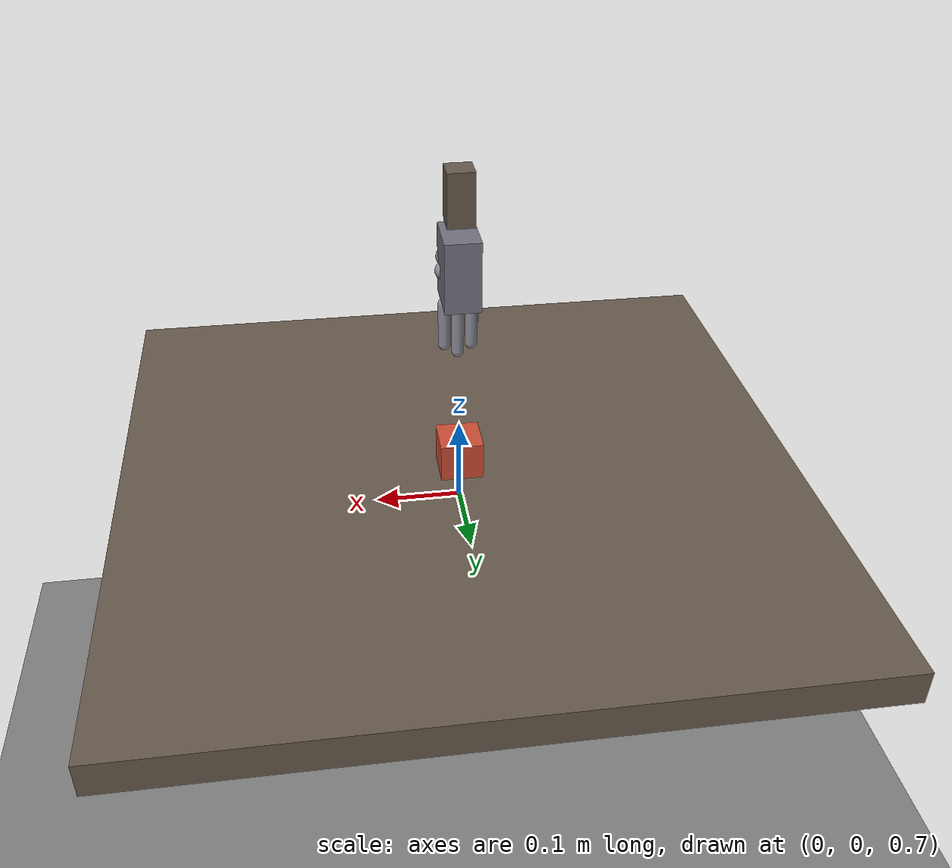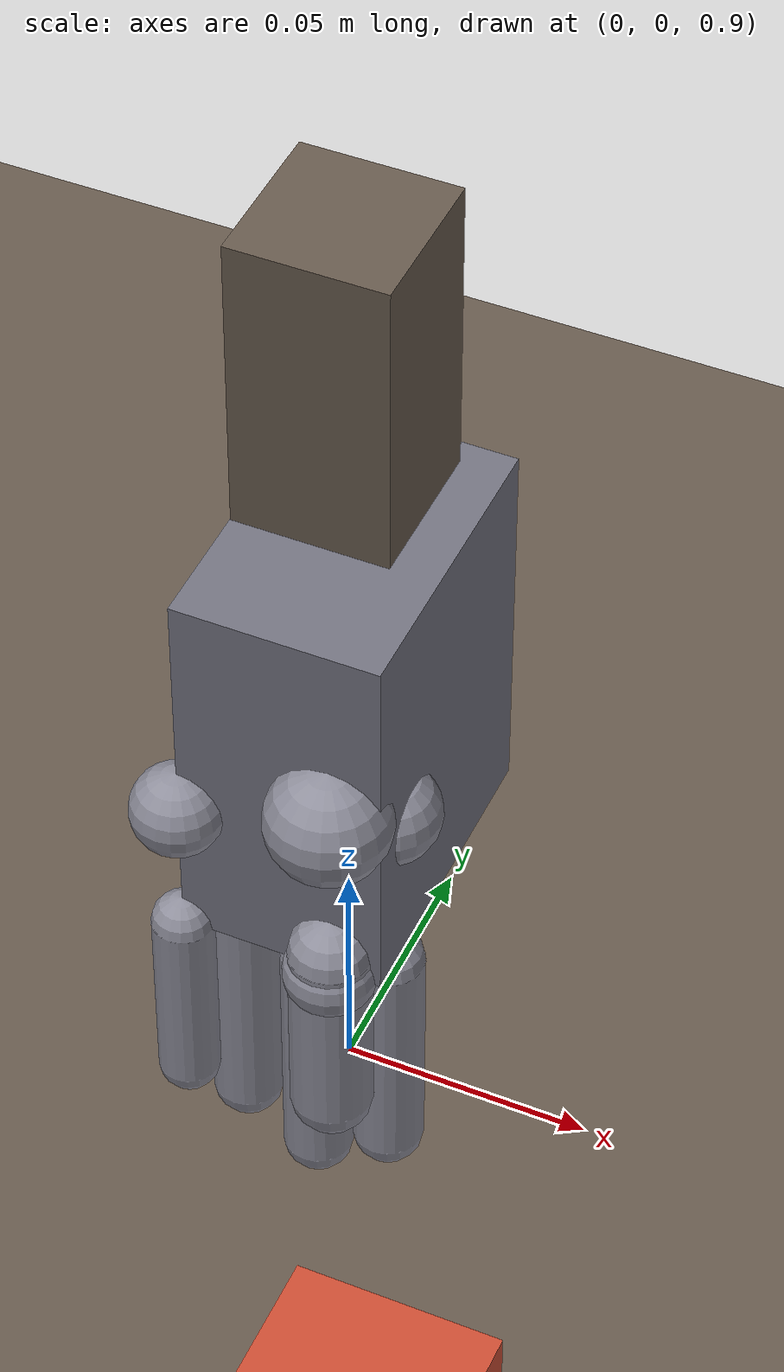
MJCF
<?xml version="1.0"?>
<mujoco model="ylyw_dexterous_hand">
  <compiler angle="radian"/>
  <option timestep="0.002" gravity="0 0 -9.81">
    <flag contact="enable"/>
  </option>

  <asset>
    <material name="palm" rgba="0.45 0.45 0.50 1"/>
    <material name="finger" rgba="0.55 0.55 0.60 1"/>
    <material name="object" rgba="0.8 0.3 0.2 1"/>
    <material name="table" rgba="0.4 0.35 0.3 1"/>
  </asset>

  <default>
    <geom type="capsule" condim="4" friction="0.8 0.005 0.0001"/>
    <joint axis="0 0 1" damping="2.0" armature="0.005" frictionloss="0.01"/>
    <position kp="50" kv="5"/>
  </default>

  <worldbody>
    <light pos="0 0 5" dir="0 0 -1" diffuse="0.8 0.8 0.8"/>
    <light pos="2 2 4" dir="-1 -1 -2" diffuse="0.8 0.8 0.8"/>
    <light pos="-2 2 3" dir="1 -1 -1" diffuse="0.3 0.3 0.3"/>

    <!-- 桌面和地面 -->
    <geom name="table" type="box" size="0.4 0.4 0.02" pos="0 0 0.72" material="table"/>
    <geom name="floor" type="plane" size="2 2 0.01" pos="0 0 0"/>

    <!-- 物体（初始在桌面中心上方，手掌正下方） -->
    <body name="object" pos="0 0 0.76">
      <freejoint name="obj_free"/>
      <geom name="obj_geom" type="box" size="0.025 0.025 0.025" mass="0.03" material="object"/>
    </body>

    <!-- 手臂Z升降导轨 -->
    <body name="arm_base" pos="0 0 1.08">
      <joint name="lift_z" type="slide" axis="0 0 1" range="-0.28 0.15" damping="0.5"/>
      <geom name="lift_mass" type="sphere" size="0.001" pos="0 0 0" mass="0"/>
      <geom name="arm_post" type="box" size="0.015 0.015 0.03" material="table"/>

      <!-- 手腕（旋转关节，控制手掌整体俯仰/偏转） -->
      <body name="wrist" pos="0 0 -0.06">
        <geom name="wrist_joint" type="sphere" size="0.015" rgba="0.3 0.3 0.8 1"/>
        <!-- 俯仰 (pitch)：绕 X 轴，控制手掌向物体倾斜 -->
        <joint name="wrist_pitch" type="hinge" axis="1 0 0" range="-0.8 0.8" damping="2.0" armature="0.01"/>
        <!-- 偏转 (yaw)：绕 Z 轴，控制手掌左右摆动 -->
        <joint name="wrist_yaw"   type="hinge" axis="0 0 1" range="-0.5 0.5" damping="2.0" armature="0.01"/>

        <!-- 手掌（挂载在手腕上，带前伸平移关节补偿手腕旋转） -->
        <body name="palm_reach" pos="0 0 -0.02">
          <!-- 前伸关节：沿手掌局部Z方向（手指指向），补偿手腕旋转的偏移 -->
          <joint name="hand_reach" type="slide" axis="0 0 1" range="-0.03 0.18" damping="5.0"/>
          <geom name="reach_guide" type="box" size="0.005 0.005 0.005" rgba="0.3 0.3 0.5 1"/>

          <body name="palm" pos="0 0 0">
            <geom name="palm_geom" type="box" size="0.02 0.03 0.04" material="palm"/>

      <!-- ---- 拇指 (thumb, 2 DOF) ---- 手掌中心指向物体 -->
      <body name="thumb_proximal" pos="0.01 -0.03 0.0">
        <geom name="thumb_base" type="sphere" size="0.012" material="finger"/>
        <joint name="THJ1" type="hinge" axis="0 1 0" range="-0.3 0.5"/>
        <body name="thumb_distal" pos="0.0 0.0 -0.035">
          <geom name="thumb_link" type="capsule" fromto="0 0 0 0 0 -0.04" size="0.008" material="finger"/>
          <joint name="THJ2" type="hinge" axis="1 0 0" range="-0.3 0.6"/>
          <geom name="thumb_tip" type="sphere" size="0.009" pos="0 0 -0.005" material="finger"/>
        </body>
      </body>

      <!-- ---- 食指 (index finger, 2 DOF) ---- 斜下指向物体 -->
      <body name="index_proximal" pos="0.015 -0.015 -0.01">
        <geom name="index_base" type="sphere" size="0.010" material="finger"/>
        <joint name="FFJ1" type="hinge" axis="1 0 0" range="-0.3 1.5"/>
        <body name="index_distal" pos="0.0 0.0 -0.04">
          <geom name="index_link" type="capsule" fromto="0 0 0 0 0 -0.05" size="0.007" material="finger"/>
          <joint name="FFJ2" type="hinge" axis="1 0 0" range="-0.3 1.5"/>
          <geom name="index_tip" type="sphere" size="0.007" pos="0 0 -0.005" material="finger"/>
        </body>
      </body>

      <!-- ---- 中指 (middle, 2 DOF) ---- 斜下 -->
      <body name="middle_proximal" pos="0.0 -0.015 -0.01">
        <geom name="middle_base" type="sphere" size="0.010" material="finger"/>
        <joint name="MFJ1" type="hinge" axis="1 0 0" range="-0.3 1.5"/>
        <body name="middle_distal" pos="0.0 0.0 -0.045">
          <geom name="middle_link" type="capsule" fromto="0 0 0 0 0 -0.055" size="0.007" material="finger"/>
          <joint name="MFJ2" type="hinge" axis="1 0 0" range="-0.3 1.5"/>
          <geom name="middle_tip" type="sphere" size="0.007" pos="0 0 -0.005" material="finger"/>
        </body>
      </body>

      <!-- ---- 无名指 (ring, 2 DOF) ---- 斜下 -->
      <body name="ring_proximal" pos="-0.015 -0.015 -0.01">
        <geom name="ring_base" type="sphere" size="0.010" material="finger"/>
        <joint name="RFJ1" type="hinge" axis="1 0 0" range="-0.3 1.5"/>
        <body name="ring_distal" pos="0.0 0.0 -0.04">
          <geom name="ring_link" type="capsule" fromto="0 0 0 0 0 -0.05" size="0.007" material="finger"/>
          <joint name="RFJ2" type="hinge" axis="1 0 0" range="-0.3 1.5"/>
          <geom name="ring_tip" type="sphere" size="0.007" pos="0 0 -0.005" material="finger"/>
        </body>
      </body>

      <!-- ---- 小指 (pinky, 2 DOF) ---- 斜下 -->
      <body name="pinky_proximal" pos="-0.02 -0.03 -0.01">
        <geom name="pinky_base" type="sphere" size="0.009" material="finger"/>
        <joint name="LFJ1" type="hinge" axis="1 0 0" range="-0.3 1.5"/>
        <body name="pinky_distal" pos="0.0 0.0 -0.03">
          <geom name="pinky_link" type="capsule" fromto="0 0 0 0 0 -0.04" size="0.006" material="finger"/>
          <joint name="LFJ2" type="hinge" axis="1 0 0" range="-0.3 1.5"/>
          <geom name="pinky_tip" type="sphere" size="0.006" pos="0 0 -0.004" material="finger"/>
        </body>
      </body>

    </body><!-- palm -->
    </body><!-- palm_reach -->
    </body><!-- wrist -->
    </body><!-- arm_base -->
  </worldbody>

  <actuator>
    <position name="lift_z" joint="lift_z" kp="500" kv="20"/>
    <position name="wrist_pitch" joint="wrist_pitch" kp="80" kv="8"/>
    <position name="wrist_yaw"   joint="wrist_yaw"   kp="80" kv="8"/>
    <position name="hand_reach"  joint="hand_reach"  kp="200" kv="20"/>
    <position name="THJ1" joint="THJ1" kp="50" kv="5"/>
    <position name="THJ2" joint="THJ2" kp="50" kv="5"/>
    <position name="FFJ1" joint="FFJ1" kp="50" kv="5"/>
    <position name="FFJ2" joint="FFJ2" kp="50" kv="5"/>
    <position name="MFJ1" joint="MFJ1" kp="50" kv="5"/>
    <position name="MFJ2" joint="MFJ2" kp="50" kv="5"/>
    <position name="RFJ1" joint="RFJ1" kp="50" kv="5"/>
    <position name="RFJ2" joint="RFJ2" kp="50" kv="5"/>
    <position name="LFJ1" joint="LFJ1" kp="50" kv="5"/>
    <position name="LFJ2" joint="LFJ2" kp="50" kv="5"/>
  </actuator>

</mujoco>
